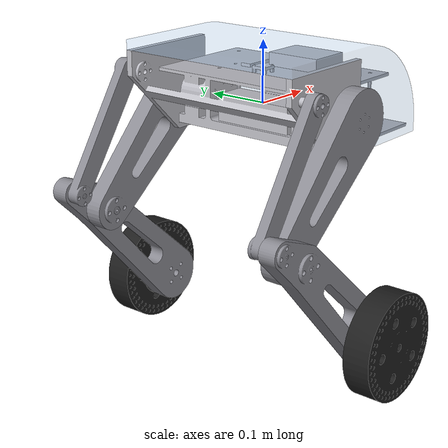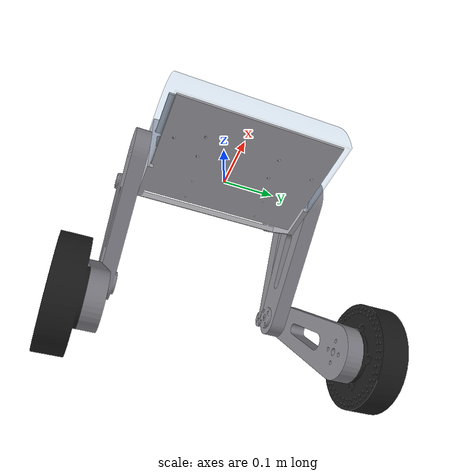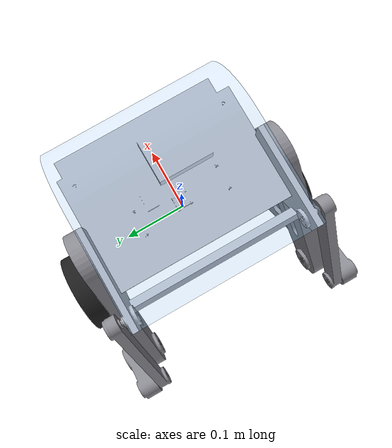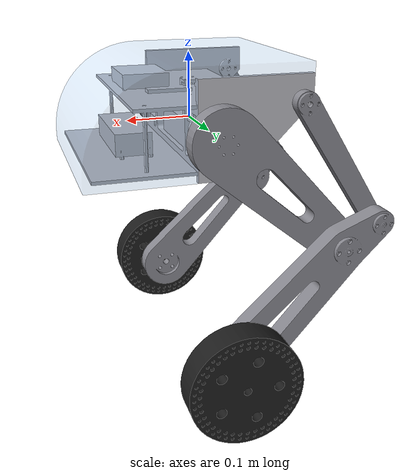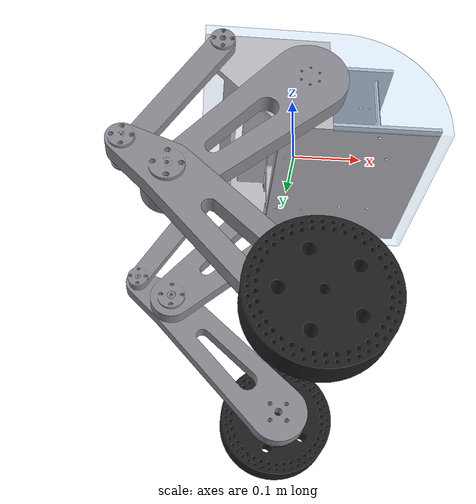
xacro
<?xml version="1.0"?>
<robot name="twlr" xmlns:xacro="http://www.ros.org/wiki/xacro">
  <xacro:arg name="acrylic_mass" default="0.515"/>
  <xacro:arg name="legs_fixed" default="true"/>
  <xacro:property name="acrylic_mass" value="$(arg acrylic_mass)"/>
  <xacro:property name="leg_joint_type" value="${'fixed' if '$(arg legs_fixed)' == 'true' else 'revolute'}"/>

  <!-- Hip motor DM4340P: rated 9 N m, peak 27 N m (check datasheet). Hip range is a placeholder. -->
  <xacro:property name="hip_effort" value="27.0"/>
  <xacro:property name="hip_velocity" value="10.0"/>
  <xacro:property name="hip_lower" value="-0.8"/>
  <xacro:property name="hip_upper" value="0.8"/>
  <!-- Hub motor WA172E: Kt 1 N m/A, rated 5 N m, stall 13 N m, no-load 210 rpm.
       effort = ODrive current_lim 10 A x Kt 1 = 10 N m -->
  <xacro:property name="wheel_effort" value="10.0"/>
  <xacro:property name="wheel_velocity" value="22.0"/>
  <xacro:property name="wheel_radius" value="0.086"/>
  <xacro:property name="wheel_width" value="0.052"/>

  <material name="body"><color rgba="0.75 0.75 0.78 1"/></material>
  <material name="leg"><color rgba="0.55 0.55 0.58 1"/></material>
  <material name="tire"><color rgba="0.12 0.12 0.12 1"/></material>
  <material name="acrylic"><color rgba="0.6 0.8 1.0 0.25"/></material>

  <link name="base_link">
    <visual>
      <geometry><mesh filename="file://$(find twlr_description)/meshes/base_link.stl"/></geometry>
      <material name="body"/>
    </visual>
    <collision>
      <origin xyz="0.0215 0 0.013" rpy="0 0 0"/>
      <geometry><box size="0.317 0.314 0.144"/></geometry>
    </collision>
    <inertial>
      <origin xyz="0.01130 -0.00219 0.00154" rpy="0 0 0"/>
      <mass value="2.8070"/>
      <inertia ixx="2.706199e-02" ixy="4.574782e-04" ixz="1.513751e-03" iyy="1.055549e-02" iyz="1.027592e-04" izz="3.241448e-02"/>
    </inertial>
  </link>

  <!-- Acrylic cover: same position as CAD, mass set by acrylic_mass argument -->
  <link name="acrylic_link">
    <visual>
      <geometry><mesh filename="file://$(find twlr_description)/meshes/acrylic_link.stl"/></geometry>
      <material name="acrylic"/>
    </visual>
    <inertial>
      <origin xyz="0.06461 0.00000 0.04985" rpy="0 0 0"/>
      <mass value="${acrylic_mass}"/>
      <inertia ixx="${acrylic_mass*1.616320e-02}" ixy="${acrylic_mass*0.000000e+00}" ixz="${acrylic_mass*3.738697e-03}" iyy="${acrylic_mass*1.308371e-02}" iyz="${acrylic_mass*0.000000e+00}" izz="${acrylic_mass*2.349483e-02}"/>
    </inertial>
  </link>
  <joint name="acrylic_joint" type="fixed">
    <parent link="base_link"/><child link="acrylic_link"/>
    <origin xyz="0 0 0" rpy="0 0 0"/>
  </joint>

  <!-- IMU (BNO085) position from CAD. Mounting orientation assumed aligned with base_link: verify on the real robot -->
  <link name="imu_link"/>
  <joint name="imu_joint" type="fixed">
    <parent link="base_link"/><child link="imu_link"/>
    <origin xyz="0.00010 -0.00010 0.05610" rpy="0 0 0"/>
  </joint>

  <!-- ===================== LEFT LEG ===================== -->
  <link name="thigh_L">
    <visual>
      <geometry><mesh filename="file://$(find twlr_description)/meshes/thigh_L.stl"/></geometry>
      <material name="leg"/>
    </visual>
    <inertial>
      <origin xyz="-0.09612 0.00385 -0.09060" rpy="0 0 0"/>
      <mass value="0.3380"/>
      <inertia ixx="1.744309e-03" ixy="-5.194156e-05" ixz="-1.634135e-03" iyy="3.620024e-03" iyz="-4.895639e-05" izz="1.937868e-03"/>
    </inertial>
  </link>
  <link name="coupler_L">
    <visual>
      <geometry><mesh filename="file://$(find twlr_description)/meshes/coupler_L.stl"/></geometry>
      <material name="leg"/>
    </visual>
    <inertial>
      <origin xyz="-0.05642 0.01290 -0.08751" rpy="0 0 0"/>
      <mass value="0.1370"/>
      <inertia ixx="8.186871e-04" ixy="-2.492300e-05" ixz="-5.174192e-04" iyy="1.153485e-03" iyz="-3.865787e-05" izz="3.497061e-04"/>
    </inertial>
  </link>
  <link name="shin_L">
    <visual>
      <geometry><mesh filename="file://$(find twlr_description)/meshes/shin_L.stl"/></geometry>
      <material name="leg"/>
    </visual>
    <inertial>
      <origin xyz="0.03933 0.01497 -0.04315" rpy="0 0 0"/>
      <mass value="0.4730"/>
      <inertia ixx="2.713007e-03" ixy="-2.002972e-05" ixz="2.569481e-03" iyy="5.449341e-03" iyz="2.437509e-05" izz="2.918773e-03"/>
    </inertial>
  </link>
  <link name="wheel_L">
    <visual>
      <geometry><mesh filename="file://$(find twlr_description)/meshes/wheel_L.stl"/></geometry>
      <material name="tire"/>
    </visual>
    <collision>
      <origin xyz="0 0 0" rpy="${pi/2} 0 0"/>
      <geometry><cylinder radius="${wheel_radius}" length="${wheel_width}"/></geometry>
    </collision>
    <inertial>
      <origin xyz="0.00000 0.00001 0.00000" rpy="0 0 0"/>
      <mass value="2.2000"/>
      <inertia ixx="4.315678e-03" ixy="-5.995426e-11" ixz="-3.177143e-11" iyy="7.828312e-03" iyz="2.605829e-11" izz="4.315678e-03"/>
    </inertial>
  </link>
  <joint name="hip_L_joint" type="${leg_joint_type}">
    <parent link="base_link"/><child link="thigh_L"/>
    <origin xyz="0.00000 0.16700 0.00000" rpy="0 0 0"/>
    <axis xyz="0 1 0"/>
    <limit lower="${hip_lower}" upper="${hip_upper}" effort="${hip_effort}" velocity="${hip_velocity}"/>
    <dynamics damping="0.01" friction="0.0"/>
  </joint>
  <joint name="coupler_L_joint" type="${leg_joint_type}">
    <parent link="base_link"/><child link="coupler_L"/>
    <origin xyz="-0.11400 0.16660 0.04900" rpy="0 0 0"/>
    <axis xyz="0 1 0"/>
    <limit lower="-3.14" upper="3.14" effort="0" velocity="20"/>
    <dynamics damping="0.01" friction="0.0"/>
  </joint>
  <joint name="knee_L_joint" type="${leg_joint_type}">
    <parent link="thigh_L"/><child link="shin_L"/>
    <origin xyz="-0.17400 0.02050 -0.16400" rpy="0 0 0"/>
    <axis xyz="0 1 0"/>
    <limit lower="-3.14" upper="3.14" effort="0" velocity="20"/>
    <dynamics damping="0.01" friction="0.0"/>
  </joint>
  <!-- positive wheel velocity = robot moves forward (+x) for BOTH wheels -->
  <joint name="wheel_L_joint" type="continuous">
    <parent link="shin_L"/><child link="wheel_L"/>
    <origin xyz="0.17000 0.05660 -0.17200" rpy="0 0 0"/>
    <axis xyz="0 1 0"/>
    <limit effort="${wheel_effort}" velocity="${wheel_velocity}"/>
    <dynamics damping="0.0" friction="0.0"/>
  </joint>
  <gazebo reference="wheel_L"><mu1>1.0</mu1><mu2>1.0</mu2><kp>1e6</kp><kd>100</kd></gazebo>

  <!-- ===================== RIGHT LEG ===================== -->
  <link name="thigh_R">
    <visual>
      <geometry><mesh filename="file://$(find twlr_description)/meshes/thigh_R.stl"/></geometry>
      <material name="leg"/>
    </visual>
    <inertial>
      <origin xyz="-0.09612 -0.00385 -0.09060" rpy="0 0 0"/>
      <mass value="0.3380"/>
      <inertia ixx="1.744310e-03" ixy="5.194156e-05" ixz="-1.634135e-03" iyy="3.620024e-03" iyz="4.895641e-05" izz="1.937868e-03"/>
    </inertial>
  </link>
  <link name="coupler_R">
    <visual>
      <geometry><mesh filename="file://$(find twlr_description)/meshes/coupler_R.stl"/></geometry>
      <material name="leg"/>
    </visual>
    <inertial>
      <origin xyz="-0.05642 -0.01290 -0.08751" rpy="0 0 0"/>
      <mass value="0.1370"/>
      <inertia ixx="8.186864e-04" ixy="2.492300e-05" ixz="-5.174190e-04" iyy="1.153484e-03" iyz="3.865784e-05" izz="3.497061e-04"/>
    </inertial>
  </link>
  <link name="shin_R">
    <visual>
      <geometry><mesh filename="file://$(find twlr_description)/meshes/shin_R.stl"/></geometry>
      <material name="leg"/>
    </visual>
    <inertial>
      <origin xyz="0.03855 -0.01518 -0.04239" rpy="0 0 0"/>
      <mass value="0.4730"/>
      <inertia ixx="2.672336e-03" ixy="3.110491e-05" ixz="2.527677e-03" iyy="5.368978e-03" iyz="-3.520729e-05" izz="2.877642e-03"/>
    </inertial>
  </link>
  <link name="wheel_R">
    <visual>
      <geometry><mesh filename="file://$(find twlr_description)/meshes/wheel_R.stl"/></geometry>
      <material name="tire"/>
    </visual>
    <collision>
      <origin xyz="0 0 0" rpy="${pi/2} 0 0"/>
      <geometry><cylinder radius="${wheel_radius}" length="${wheel_width}"/></geometry>
    </collision>
    <inertial>
      <origin xyz="0.00000 -0.00001 0.00000" rpy="0 0 0"/>
      <mass value="2.2000"/>
      <inertia ixx="4.315678e-03" ixy="6.616095e-11" ixz="-3.577065e-11" iyy="7.828312e-03" iyz="-2.679858e-11" izz="4.315678e-03"/>
    </inertial>
  </link>
  <joint name="hip_R_joint" type="${leg_joint_type}">
    <parent link="base_link"/><child link="thigh_R"/>
    <origin xyz="0.00000 -0.16700 0.00000" rpy="0 0 0"/>
    <axis xyz="0 1 0"/>
    <limit lower="${hip_lower}" upper="${hip_upper}" effort="${hip_effort}" velocity="${hip_velocity}"/>
    <dynamics damping="0.01" friction="0.0"/>
  </joint>
  <joint name="coupler_R_joint" type="${leg_joint_type}">
    <parent link="base_link"/><child link="coupler_R"/>
    <origin xyz="-0.11400 -0.16660 0.04900" rpy="0 0 0"/>
    <axis xyz="0 1 0"/>
    <limit lower="-3.14" upper="3.14" effort="0" velocity="20"/>
    <dynamics damping="0.01" friction="0.0"/>
  </joint>
  <joint name="knee_R_joint" type="${leg_joint_type}">
    <parent link="thigh_R"/><child link="shin_R"/>
    <origin xyz="-0.17400 -0.02050 -0.16400" rpy="0 0 0"/>
    <axis xyz="0 1 0"/>
    <limit lower="-3.14" upper="3.14" effort="0" velocity="20"/>
    <dynamics damping="0.01" friction="0.0"/>
  </joint>
  <!-- positive wheel velocity = robot moves forward (+x) for BOTH wheels -->
  <joint name="wheel_R_joint" type="continuous">
    <parent link="shin_R"/><child link="wheel_R"/>
    <origin xyz="0.17000 -0.05660 -0.17200" rpy="0 0 0"/>
    <axis xyz="0 1 0"/>
    <limit effort="${wheel_effort}" velocity="${wheel_velocity}"/>
    <dynamics damping="0.0" friction="0.0"/>
  </joint>
  <gazebo reference="wheel_R"><mu1>1.0</mu1><mu2>1.0</mu2><kp>1e6</kp><kd>100</kd></gazebo>

  <!-- 4-bar loop closure (coupler - shin). URDF cannot describe loops, so it is added as raw SDF.
       Only used when legs_fixed:=false. Stage 2 item: verify in Gazebo before relying on it. -->
  <xacro:unless value="$(arg legs_fixed)">
    <gazebo>
      <joint name="closure_L_joint" type="revolute">
        <parent>coupler_L</parent><child>shin_L</child>
        <pose>-0.05450 0.00580 0.03540 0 0 0</pose>
        <axis><xyz>0 1 0</xyz><limit><lower>-3.14</lower><upper>3.14</upper></limit></axis>
      </joint>
      <joint name="closure_R_joint" type="revolute">
        <parent>coupler_R</parent><child>shin_R</child>
        <pose>-0.05450 -0.00580 0.03540 0 0 0</pose>
        <axis><xyz>0 1 0</xyz><limit><lower>-3.14</lower><upper>3.14</upper></limit></axis>
      </joint>
    </gazebo>
  </xacro:unless>

  <!-- ===================== Gazebo sensors and plugins ===================== -->
  <gazebo reference="imu_link">
    <sensor name="imu" type="imu">
      <always_on>true</always_on>
      <update_rate>400</update_rate>
      <topic>imu</topic>
      <gz_frame_id>imu_link</gz_frame_id>
      <!-- orientation relative to the world (gravity), like the real BNO085 game rotation vector -->
      <imu><orientation_reference_frame><localization>ENU</localization></orientation_reference_frame></imu>
    </sensor>
  </gazebo>
  <gazebo>
    <plugin filename="gz-sim-joint-state-publisher-system" name="gz::sim::systems::JointStatePublisher">
      <topic>joint_states</topic>
    </plugin>
    <!-- wheel torque input: gz topic /model/twlr/joint/wheel_X_joint/cmd_force [N m] -->
    <plugin filename="gz-sim-apply-joint-force-system" name="gz::sim::systems::ApplyJointForce">
      <joint_name>wheel_L_joint</joint_name>
    </plugin>
    <plugin filename="gz-sim-apply-joint-force-system" name="gz::sim::systems::ApplyJointForce">
      <joint_name>wheel_R_joint</joint_name>
    </plugin>
  </gazebo>
</robot>
